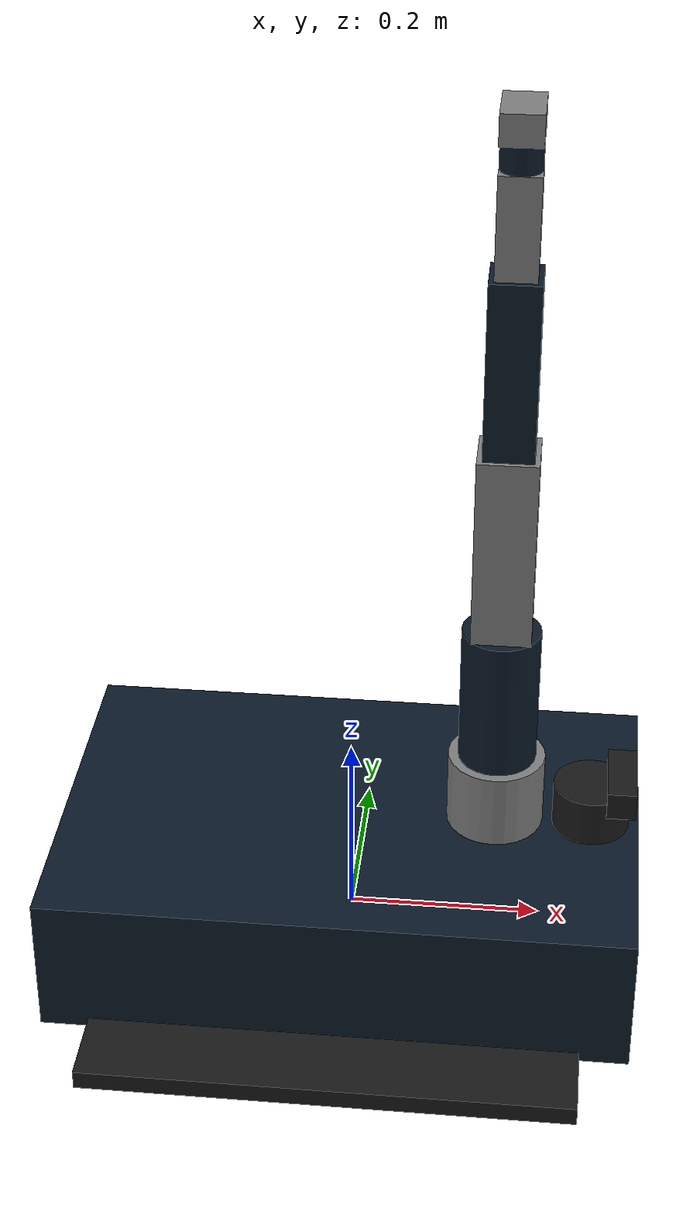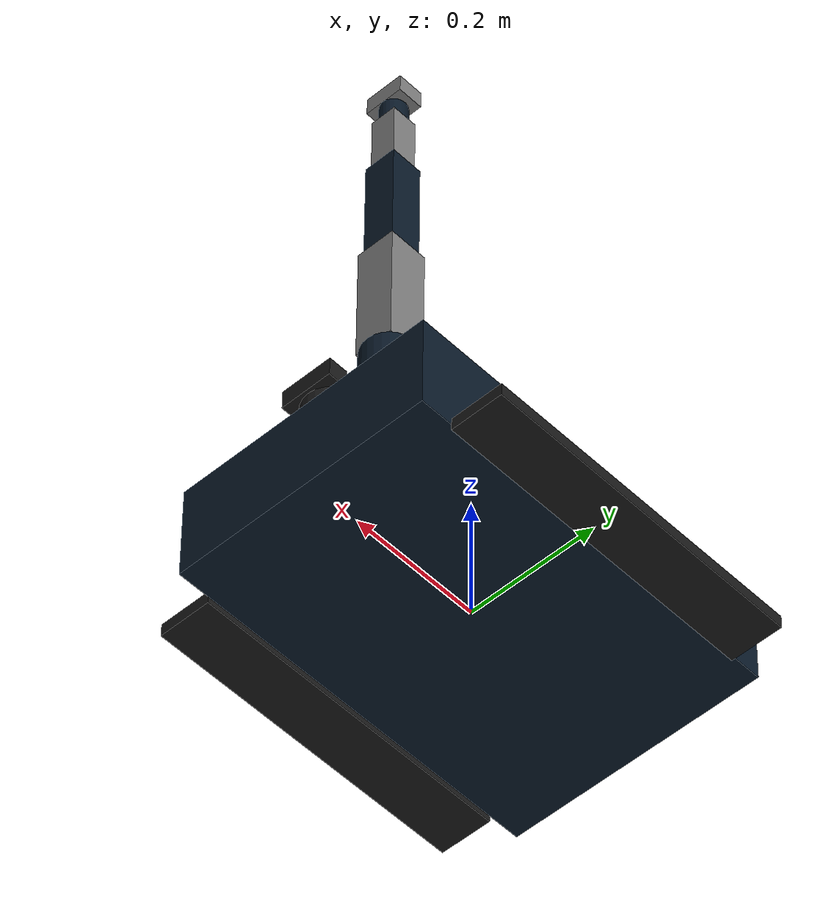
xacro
<?xml version="1.0"?>
<robot xmlns:xacro="http://www.ros.org/wiki/xacro" name="rufus">

  <!-- Constants -->
  <xacro:property name="chassis_length" value="0.6"/>
  <xacro:property name="chassis_width" value="0.4"/>
  <xacro:property name="chassis_height" value="0.15"/>
  <xacro:property name="chassis_mass" value="15.0"/>

  <xacro:property name="track_width" value="0.08"/>
  <xacro:property name="track_length" value="0.5"/>

  <xacro:property name="wheel_radius" value="0.05"/>
  <xacro:property name="wheel_width" value="0.04"/>
  <xacro:property name="wheel_mass" value="0.5"/>

  <!-- Colors -->
  <material name="black">
    <color rgba="0.1 0.1 0.1 1.0"/>
  </material>

  <material name="dark_blue">
    <color rgba="0.04 0.10 0.16 1.0"/>
  </material>

  <material name="gray">
    <color rgba="0.5 0.5 0.5 1.0"/>
  </material>

  <!-- Base Link -->
  <link name="base_link">
    <visual>
      <geometry>
        <box size="${chassis_length} ${chassis_width} ${chassis_height}"/>
      </geometry>
      <material name="dark_blue"/>
    </visual>
    <collision>
      <geometry>
        <box size="${chassis_length} ${chassis_width} ${chassis_height}"/>
      </geometry>
    </collision>
    <inertial>
      <mass value="${chassis_mass}"/>
      <inertia ixx="${chassis_mass/12*(chassis_width*chassis_width+chassis_height*chassis_height)}"
               ixy="0.0" ixz="0.0"
               iyy="${chassis_mass/12*(chassis_length*chassis_length+chassis_height*chassis_height)}"
               iyz="0.0"
               izz="${chassis_mass/12*(chassis_length*chassis_length+chassis_width*chassis_width)}"/>
    </inertial>
  </link>

  <!-- Base Footprint -->
  <link name="base_footprint"/>

  <joint name="base_footprint_joint" type="fixed">
    <parent link="base_footprint"/>
    <child link="base_link"/>
    <origin xyz="0 0 ${wheel_radius}" rpy="0 0 0"/>
  </joint>

  <!-- Left Track -->
  <link name="left_track">
    <visual>
      <geometry>
        <box size="${track_length} ${track_width} 0.02"/>
      </geometry>
      <material name="black"/>
    </visual>
    <collision>
      <geometry>
        <box size="${track_length} ${track_width} 0.02"/>
      </geometry>
    </collision>
    <inertial>
      <mass value="2.0"/>
      <inertia ixx="0.01" ixy="0.0" ixz="0.0" iyy="0.01" iyz="0.0" izz="0.01"/>
    </inertial>
  </link>

  <joint name="left_track_joint" type="continuous">
    <parent link="base_link"/>
    <child link="left_track"/>
    <origin xyz="0 ${chassis_width/2+track_width/2} ${-chassis_height/2}" rpy="0 0 0"/>
    <axis xyz="0 1 0"/>
  </joint>

  <!-- Right Track -->
  <link name="right_track">
    <visual>
      <geometry>
        <box size="${track_length} ${track_width} 0.02"/>
      </geometry>
      <material name="black"/>
    </visual>
    <collision>
      <geometry>
        <box size="${track_length} ${track_width} 0.02"/>
      </geometry>
    </collision>
    <inertial>
      <mass value="2.0"/>
      <inertia ixx="0.01" ixy="0.0" ixz="0.0" iyy="0.01" iyz="0.0" izz="0.01"/>
    </inertial>
  </link>

  <joint name="right_track_joint" type="continuous">
    <parent link="base_link"/>
    <child link="right_track"/>
    <origin xyz="0 ${-(chassis_width/2+track_width/2)} ${-chassis_height/2}" rpy="0 0 0"/>
    <axis xyz="0 1 0"/>
  </joint>

  <!-- Arm Base Link -->
  <link name="arm_base_link">
    <visual>
      <geometry>
        <cylinder radius="0.05" length="0.08"/>
      </geometry>
      <material name="gray"/>
    </visual>
    <collision>
      <geometry>
        <cylinder radius="0.05" length="0.08"/>
      </geometry>
    </collision>
    <inertial>
      <mass value="0.5"/>
      <inertia ixx="0.001" ixy="0.0" ixz="0.0" iyy="0.001" iyz="0.0" izz="0.001"/>
    </inertial>
  </link>

  <joint name="arm_base_joint" type="fixed">
    <parent link="base_link"/>
    <child link="arm_base_link"/>
    <origin xyz="${chassis_length/4} 0 ${chassis_height/2+0.04}" rpy="0 0 0"/>
  </joint>

  <!-- Arm Link 1 (Base Rotation) -->
  <link name="arm_link_1">
    <visual>
      <geometry>
        <cylinder radius="0.04" length="0.15"/>
      </geometry>
      <material name="dark_blue"/>
    </visual>
    <collision>
      <geometry>
        <cylinder radius="0.04" length="0.15"/>
      </geometry>
    </collision>
    <inertial>
      <mass value="0.3"/>
      <inertia ixx="0.001" ixy="0.0" ixz="0.0" iyy="0.001" iyz="0.0" izz="0.0005"/>
    </inertial>
  </link>

  <joint name="base_joint" type="revolute">
    <parent link="arm_base_link"/>
    <child link="arm_link_1"/>
    <origin xyz="0 0 0.115" rpy="0 0 0"/>
    <axis xyz="0 0 1"/>
    <limit lower="${-pi}" upper="${pi}" effort="10.0" velocity="2.0"/>
  </joint>

  <!-- Arm Link 2 (Shoulder) -->
  <link name="arm_link_2">
    <visual>
      <origin xyz="0 0 0.1" rpy="0 0 0"/>
      <geometry>
        <box size="0.06 0.06 0.2"/>
      </geometry>
      <material name="gray"/>
    </visual>
    <collision>
      <origin xyz="0 0 0.1" rpy="0 0 0"/>
      <geometry>
        <box size="0.06 0.06 0.2"/>
      </geometry>
    </collision>
    <inertial>
      <mass value="0.4"/>
      <inertia ixx="0.002" ixy="0.0" ixz="0.0" iyy="0.002" iyz="0.0" izz="0.0005"/>
    </inertial>
  </link>

  <joint name="shoulder_joint" type="revolute">
    <parent link="arm_link_1"/>
    <child link="arm_link_2"/>
    <origin xyz="0 0 0.075" rpy="0 0 0"/>
    <axis xyz="0 1 0"/>
    <limit lower="${-pi/2}" upper="${pi/2}" effort="10.0" velocity="2.0"/>
  </joint>

  <!-- Arm Link 3 (Elbow) -->
  <link name="arm_link_3">
    <visual>
      <origin xyz="0 0 0.09" rpy="0 0 0"/>
      <geometry>
        <box size="0.05 0.05 0.18"/>
      </geometry>
      <material name="dark_blue"/>
    </visual>
    <collision>
      <origin xyz="0 0 0.09" rpy="0 0 0"/>
      <geometry>
        <box size="0.05 0.05 0.18"/>
      </geometry>
    </collision>
    <inertial>
      <mass value="0.3"/>
      <inertia ixx="0.001" ixy="0.0" ixz="0.0" iyy="0.001" iyz="0.0" izz="0.0003"/>
    </inertial>
  </link>

  <joint name="elbow_joint" type="revolute">
    <parent link="arm_link_2"/>
    <child link="arm_link_3"/>
    <origin xyz="0 0 0.2" rpy="0 0 0"/>
    <axis xyz="0 1 0"/>
    <limit lower="${-pi/2}" upper="${pi/2}" effort="8.0" velocity="2.0"/>
  </joint>

  <!-- Arm Link 4 (Wrist Pitch) -->
  <link name="arm_link_4">
    <visual>
      <origin xyz="0 0 0.05" rpy="0 0 0"/>
      <geometry>
        <box size="0.04 0.04 0.1"/>
      </geometry>
      <material name="gray"/>
    </visual>
    <collision>
      <origin xyz="0 0 0.05" rpy="0 0 0"/>
      <geometry>
        <box size="0.04 0.04 0.1"/>
      </geometry>
    </collision>
    <inertial>
      <mass value="0.2"/>
      <inertia ixx="0.0005" ixy="0.0" ixz="0.0" iyy="0.0005" iyz="0.0" izz="0.0002"/>
    </inertial>
  </link>

  <joint name="wrist_pitch_joint" type="revolute">
    <parent link="arm_link_3"/>
    <child link="arm_link_4"/>
    <origin xyz="0 0 0.18" rpy="0 0 0"/>
    <axis xyz="0 1 0"/>
    <limit lower="${-pi/2}" upper="${pi/2}" effort="5.0" velocity="2.0"/>
  </joint>

  <!-- Arm Link 5 (Wrist Roll) -->
  <link name="arm_link_5">
    <visual>
      <geometry>
        <cylinder radius="0.02" length="0.06"/>
      </geometry>
      <material name="dark_blue"/>
    </visual>
    <collision>
      <geometry>
        <cylinder radius="0.02" length="0.06"/>
      </geometry>
    </collision>
    <inertial>
      <mass value="0.1"/>
      <inertia ixx="0.0002" ixy="0.0" ixz="0.0" iyy="0.0002" iyz="0.0" izz="0.0001"/>
    </inertial>
  </link>

  <joint name="wrist_roll_joint" type="revolute">
    <parent link="arm_link_4"/>
    <child link="arm_link_5"/>
    <origin xyz="0 0 0.1" rpy="0 0 0"/>
    <axis xyz="0 0 1"/>
    <limit lower="${-pi}" upper="${pi}" effort="3.0" velocity="2.0"/>
  </joint>

  <!-- Gripper Base -->
  <link name="gripper_base">
    <visual>
      <geometry>
        <box size="0.04 0.06 0.03"/>
      </geometry>
      <material name="gray"/>
    </visual>
    <collision>
      <geometry>
        <box size="0.04 0.06 0.03"/>
      </geometry>
    </collision>
    <inertial>
      <mass value="0.1"/>
      <inertia ixx="0.0001" ixy="0.0" ixz="0.0" iyy="0.0001" iyz="0.0" izz="0.0001"/>
    </inertial>
  </link>

  <joint name="gripper_joint" type="revolute">
    <parent link="arm_link_5"/>
    <child link="gripper_base"/>
    <origin xyz="0 0 0.045" rpy="0 0 0"/>
    <axis xyz="1 0 0"/>
    <limit lower="0" upper="${pi/4}" effort="2.0" velocity="1.0"/>
  </joint>

  <!-- Lidar -->
  <link name="lidar_link">
    <visual>
      <geometry>
        <cylinder radius="0.04" length="0.05"/>
      </geometry>
      <material name="black"/>
    </visual>
    <collision>
      <geometry>
        <cylinder radius="0.04" length="0.05"/>
      </geometry>
    </collision>
    <inertial>
      <mass value="0.2"/>
      <inertia ixx="0.0001" ixy="0.0" ixz="0.0" iyy="0.0001" iyz="0.0" izz="0.0001"/>
    </inertial>
  </link>

  <joint name="lidar_joint" type="fixed">
    <parent link="base_link"/>
    <child link="lidar_link"/>
    <origin xyz="${chassis_length/2-0.05} 0 ${chassis_height/2+0.025}" rpy="0 0 0"/>
  </joint>

  <!-- Camera -->
  <link name="camera_link">
    <visual>
      <geometry>
        <box size="0.03 0.08 0.03"/>
      </geometry>
      <material name="black"/>
    </visual>
    <collision>
      <geometry>
        <box size="0.03 0.08 0.03"/>
      </geometry>
    </collision>
    <inertial>
      <mass value="0.1"/>
      <inertia ixx="0.0001" ixy="0.0" ixz="0.0" iyy="0.0001" iyz="0.0" izz="0.0001"/>
    </inertial>
  </link>

  <joint name="camera_joint" type="fixed">
    <parent link="base_link"/>
    <child link="camera_link"/>
    <origin xyz="${chassis_length/2-0.02} 0 ${chassis_height/2+0.05}" rpy="0 0 0"/>
  </joint>

  <!-- Gazebo-specific properties -->
  <gazebo reference="base_link">
    <material>Gazebo/DarkBlue</material>
  </gazebo>

  <gazebo reference="left_track">
    <material>Gazebo/Black</material>
    <mu1>1.0</mu1>
    <mu2>1.0</mu2>
  </gazebo>

  <gazebo reference="right_track">
    <material>Gazebo/Black</material>
    <mu1>1.0</mu1>
    <mu2>1.0</mu2>
  </gazebo>

</robot>
